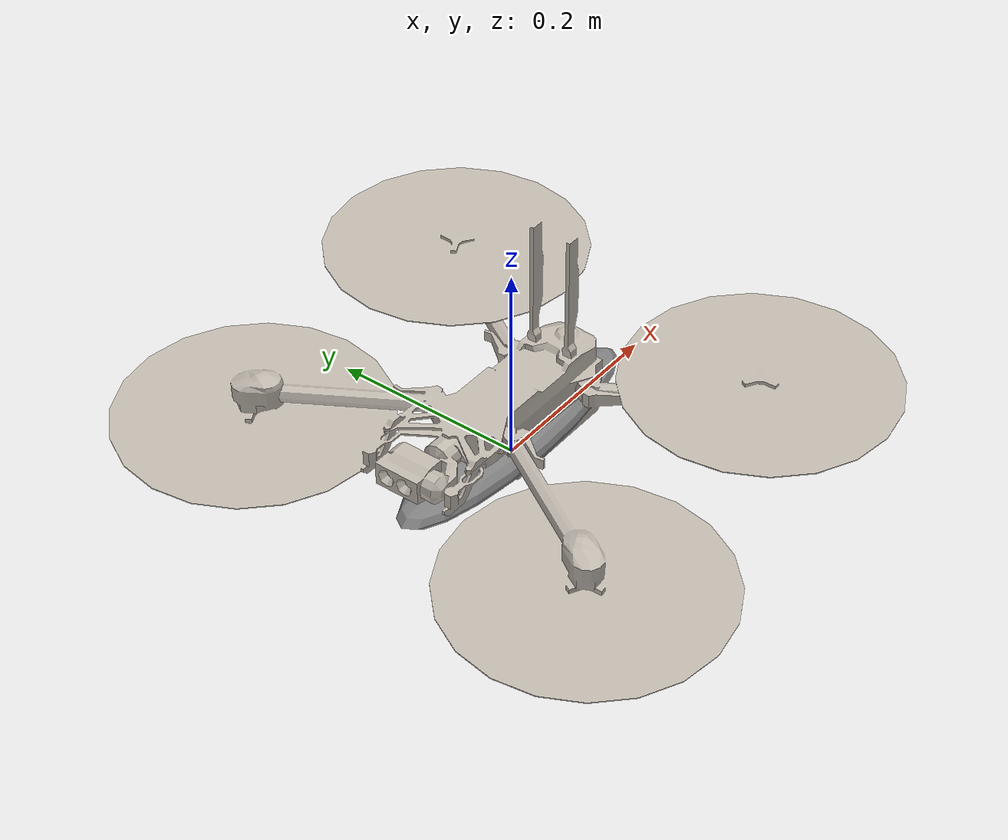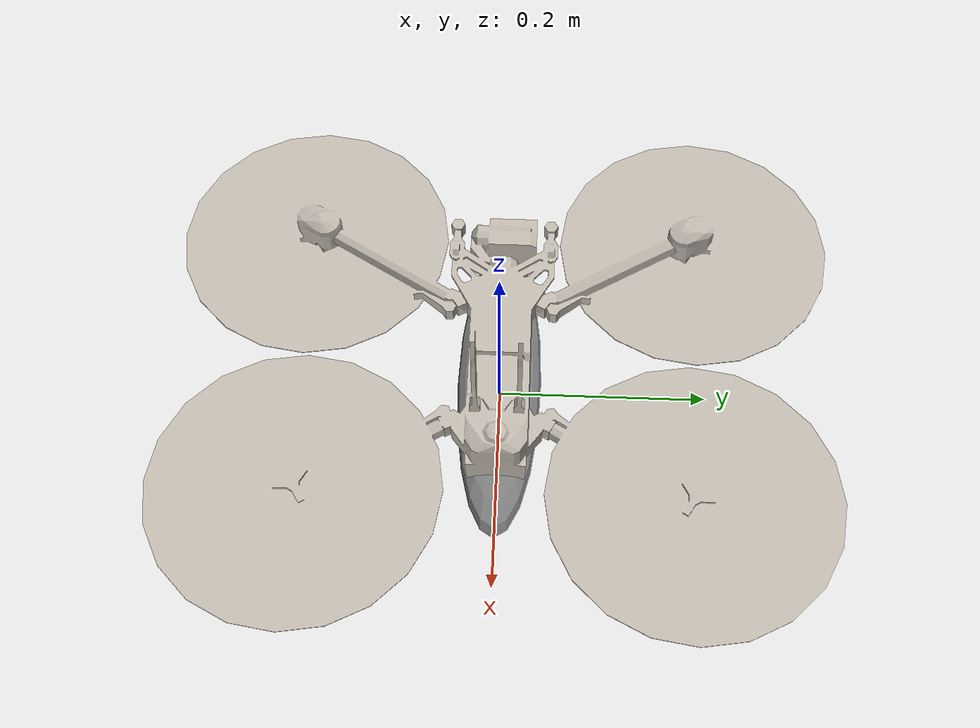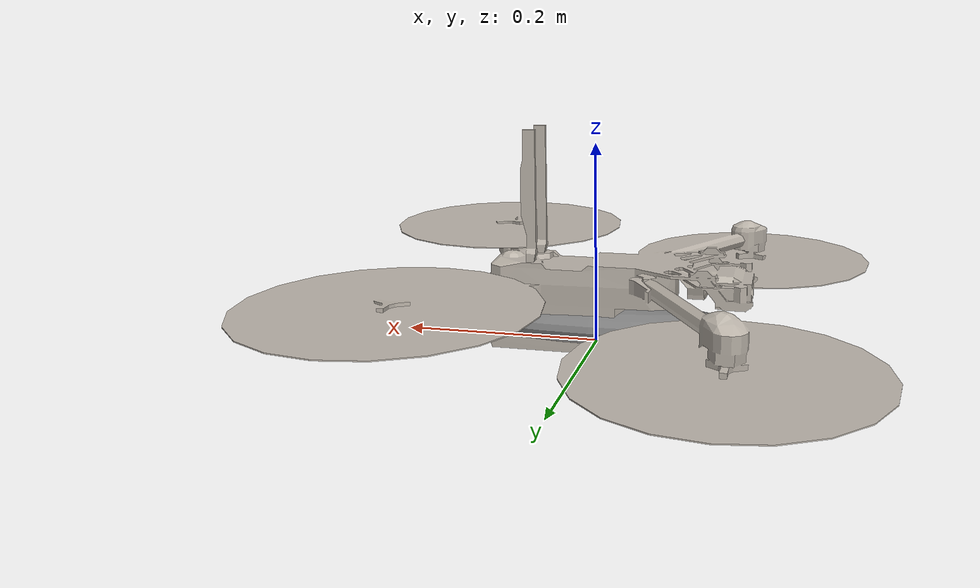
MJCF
<?xml version="1.0" ?>
<mujoco model="Skydio X2">
	<compiler meshdir="Skydio X2/meshes" texturedir="Skydio X2/textures" angle="radian" autolimits="true" balanceinertia="true" boundmass="0.000001" boundinertia="0.000001"/>
	<default>
		<default class="visual">
			<geom contype="0" conaffinity="0"/>
		</default>
		<default class="collision">
			<geom rgba="1.0 0.0 0.0 0.0"/>
		</default>
	</default>
	<asset>
		<mesh name="X2_lowpoly" file="obj/X2_lowpoly.obj" scale="1.0 1.0 1.0"/>
		<material name="phong3SG" texture="X2_lowpoly_texture_SpinningProps_1024"/>
		<texture name="X2_lowpoly_texture_SpinningProps_1024" type="2d" file="X2_lowpoly_texture_SpinningProps_1024.png"/>
	</asset>
	<worldbody>
		<body name="Skydio_X2" pos="0.0 0.0 0.0" quat="1.0 0.0 0.0 0.0">
			<body name="x2" pos="0.0 0.0 0.0" quat="1.0 0.0 0.0 0.0">
				<geom name="Geom_0" type="mesh" pos="-0.004080660175532103 -0.0002564114984124899 0.06291300058364868" quat="-0.48844724893569946 0.48802614212036133 0.5120365023612976 0.5109484791755676" mesh="X2_lowpoly" material="phong3SG" class="visual"/>
				<geom name="Geom_1" type="box" pos="0.03999999910593033 0.0 0.019999999552965164" quat="1.0 0.0 0.0 0.0" size="0.05999999865889549 0.027000000700354576 0.019999999552965164" class="collision"/>
				<geom name="Geom_2" type="box" pos="0.03999999910593033 0.0 0.05999999865889549" quat="1.0 0.0 0.0 0.0" size="0.05999999865889549 0.027000000700354576 0.019999999552965164" class="collision"/>
				<geom name="Geom_3" type="box" pos="-0.07000000029802322 0.0 0.06499999761581421" quat="1.0 0.0 0.0 0.0" size="0.05000000074505806 0.027000000700354576 0.019999999552965164" class="collision"/>
				<geom name="Geom_4" type="box" pos="-0.13699999451637268 0.00800000037997961 0.06499999761581421" quat="0.7071067690849304 0.0 0.0 0.7071067690849304" size="0.023000000044703484 0.017000000923871994 0.009999999776482582" class="collision"/>
				<geom name="rotor1" type="ellipsoid" pos="-0.14000000059604645 -0.18000000715255737 0.05000000074505806" quat="1.0 0.0 0.0 0.0" size="0.12999999523162842 0.12999999523162842 0.009999999776482582" class="collision"/>
				<geom name="rotor2" type="ellipsoid" pos="-0.14000000059604645 0.18000000715255737 0.05000000074505806" quat="1.0 0.0 0.0 0.0" size="0.12999999523162842 0.12999999523162842 0.009999999776482582" class="collision"/>
				<geom name="rotor3" type="ellipsoid" pos="0.14000000059604645 0.18000000715255737 0.07999999821186066" quat="1.0 0.0 0.0 0.0" size="0.12999999523162842 0.12999999523162842 0.009999999776482582" class="collision"/>
				<geom name="rotor4" type="ellipsoid" pos="0.14000000059604645 -0.18000000715255737 0.07999999821186066" quat="1.0 0.0 0.0 0.0" size="0.12999999523162842 0.12999999523162842 0.009999999776482582" class="collision"/>
				<geom name="Geom_9" type="ellipsoid" pos="0.0 0.0 0.019999999552965164" quat="1.0 0.0 0.0 0.0" size="0.1599999964237213 0.03999999910593033 0.019999999552965164" class="visual"/>
			</body>
		</body>
	</worldbody>
	<equality/>
</mujoco>
